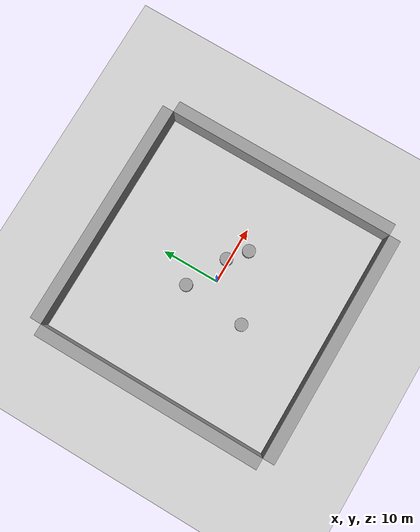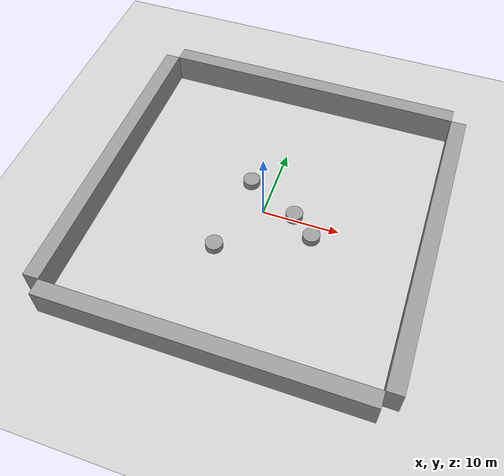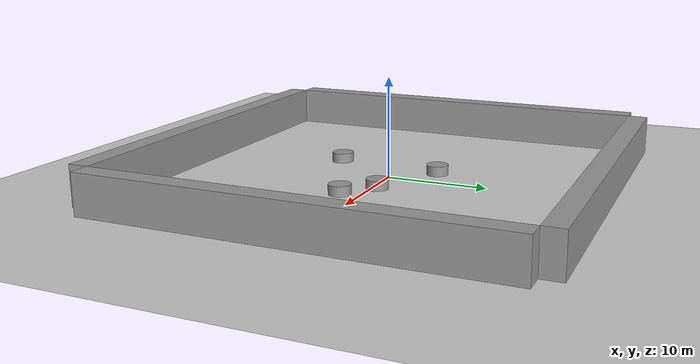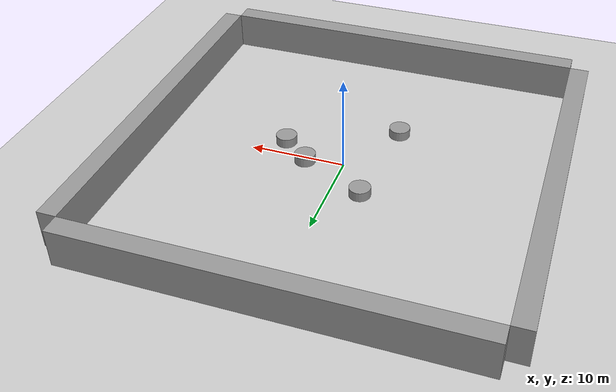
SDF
<sdf version="1.6">
 <world name="default">
  <light name="sun" type="directional">
   <pose>0 0 10 0 -0 0</pose>
   <diffuse>0.8 0.8 0.8 1</diffuse>
   <specular>0.1 0.1 0.1 1</specular>
   <attenuation>
    <range>1000</range>
    <constant>0.9</constant>
    <linear>0.01</linear>
    <quadratic>0.001</quadratic>
   </attenuation>
   <direction>-0.5 0.5 -1</direction>
  </light>
  <model name="ground_plane">
   <static>1</static>
   <link name="link">
    <collision name="collision">
     <geometry><plane><normal>0 0 1</normal><size>100 100</size></plane></geometry>
     <surface><friction><ode><mu>100</mu><mu2>50</mu2></ode></friction></surface>
    </collision>
    <visual name="visual">
     <cast_shadows>0</cast_shadows>
     <geometry><plane><normal>0 0 1</normal><size>100 100</size></plane></geometry>
     <material>
      <script><uri>file://media/materials/scripts/gazebo.material</uri><name>Gazebo/Grey</name></script>
     </material>
    </visual>
   </link>
  </model>
  <gravity>0 0 -9.8</gravity>
  <magnetic_field>6e-06 2.3e-05 -4.2e-05</magnetic_field>
  <atmosphere type="adiabatic"/>
  <physics name="default_physics" default="0" type="ode">
   <max_step_size>0.001</max_step_size>
   <real_time_factor>1</real_time_factor>
   <real_time_update_rate>1000</real_time_update_rate>
  </physics>
  <scene><ambient>0.4 0.4 0.4 1</ambient><background>0.7 0.7 0.7 1</background><shadows>1</shadows></scene>
  <spherical_coordinates>
   <surface_model>EARTH_WGS84</surface_model>
   <latitude_deg>0</latitude_deg>
   <longitude_deg>0</longitude_deg>
   <elevation>0</elevation>
   <heading_deg>0</heading_deg>
  </spherical_coordinates>
  <model name="unit_box_0">
   <static>1</static>
   <pose>0 21 2 0 -0 0</pose>
   <link name="link">
    <inertial>
     <mass>1</mass>
     <inertia>
      <ixx>0.166667</ixx>
      <ixy>0</ixy>
      <ixz>0</ixz>
      <iyy>0.166667</iyy>
      <iyz>0</iyz>
      <izz>0.166667</izz>
     </inertia>
    </inertial>
    <collision name="collision"><geometry><box><size>40 2 4</size></box></geometry></collision>
    <visual name="visual">
     <cast_shadows>0</cast_shadows>
     <geometry><box><size>40 2 4</size></box></geometry>
     <material>
      <script><name>Gazebo/Grey</name><uri>file://media/materials/scripts/gazebo.material</uri></script>
     </material>
    </visual>
    <gravity>0</gravity>
   </link>
  </model>
  <model name="unit_box_1">
   <static>1</static>
   <pose>0 -21 2 0 -0 0</pose>
   <link name="link">
    <inertial>
     <mass>1</mass>
     <inertia>
      <ixx>0.166667</ixx>
      <ixy>0</ixy>
      <ixz>0</ixz>
      <iyy>0.166667</iyy>
      <iyz>0</iyz>
      <izz>0.166667</izz>
     </inertia>
    </inertial>
    <collision name="collision"><geometry><box><size>40 2 4</size></box></geometry></collision>
    <visual name="visual">
     <cast_shadows>0</cast_shadows>
     <geometry><box><size>40 2 4</size></box></geometry>
     <material>
      <script><name>Gazebo/Grey</name><uri>file://media/materials/scripts/gazebo.material</uri></script>
     </material>
    </visual>
    <gravity>0</gravity>
   </link>
  </model>
  <model name="unit_box_2">
   <static>1</static>
   <pose>21 0 2 0 -0 0</pose>
   <link name="link">
    <inertial>
     <mass>1</mass>
     <inertia>
      <ixx>0.166667</ixx>
      <ixy>0</ixy>
      <ixz>0</ixz>
      <iyy>0.166667</iyy>
      <iyz>0</iyz>
      <izz>0.166667</izz>
     </inertia>
    </inertial>
    <collision name="collision"><geometry><box><size>2 40 4</size></box></geometry></collision>
    <visual name="visual">
     <cast_shadows>0</cast_shadows>
     <geometry><box><size>2 40 4</size></box></geometry>
     <material>
      <script><name>Gazebo/Grey</name><uri>file://media/materials/scripts/gazebo.material</uri></script>
     </material>
    </visual>
    <gravity>0</gravity>
   </link>
  </model>
  <model name="unit_box_3">
   <static>1</static>
   <pose>-21 0 2 0 -0 0</pose>
   <link name="link">
    <inertial>
     <mass>1</mass>
     <inertia>
      <ixx>0.166667</ixx>
      <ixy>0</ixy>
      <ixz>0</ixz>
      <iyy>0.166667</iyy>
      <iyz>0</iyz>
      <izz>0.166667</izz>
     </inertia>
    </inertial>
    <collision name="collision"><geometry><box><size>2 40 4</size></box></geometry></collision>
    <visual name="visual">
     <cast_shadows>0</cast_shadows>
     <geometry><box><size>2 40 4</size></box></geometry>
     <material>
      <script><name>Gazebo/Grey</name><uri>file://media/materials/scripts/gazebo.material</uri></script>
     </material>
    </visual>
    <gravity>0</gravity>
   </link>
  </model>
  <model name="unit_cylinder_0">
   <static>1</static>
   <pose>-4 -7 0.5 0 0 0</pose>
   <link name="link">
    <inertial>
     <mass>1</mass>
     <inertia><ixx>0.145833</ixx><ixy>0</ixy><ixz>0</ixz><iyy>0.145833</iyy><iyz>0</iyz><izz>0.125</izz></inertia>
    </inertial>
    <collision name="collision">
     <geometry><cylinder><radius>1.1</radius><length>1</length></cylinder></geometry>
    </collision>
    <visual name="visual">
     <geometry><cylinder><radius>1.1</radius><length>1</length></cylinder></geometry>
     <material>
      <script><name>Gazebo/Grey</name><uri>file://media/materials/scripts/gazebo.material</uri></script>
     </material>
    </visual>
   </link>
  </model>
  <model name="unit_cylinder_1">
   <static>1</static>
   <pose>-3 4 0.5 0 0 0</pose>
   <link name="link">
    <inertial>
     <mass>1</mass>
     <inertia><ixx>0.145833</ixx><ixy>0</ixy><ixz>0</ixz><iyy>0.145833</iyy><iyz>0</iyz><izz>0.125</izz></inertia>
    </inertial>
    <collision name="collision">
     <geometry><cylinder><radius>1.1</radius><length>1</length></cylinder></geometry>
    </collision>
    <visual name="visual">
     <geometry><cylinder><radius>1.1</radius><length>1</length></cylinder></geometry>
     <material>
      <script><name>Gazebo/Grey</name><uri>file://media/materials/scripts/gazebo.material</uri></script>
     </material>
    </visual>
   </link>
  </model>
  <model name="unit_cylinder_2">
   <static>1</static>
   <pose>7 -2 0.5 0 0 0</pose>
   <link name="link">
    <inertial>
     <mass>1</mass>
     <inertia><ixx>0.145833</ixx><ixy>0</ixy><ixz>0</ixz><iyy>0.145833</iyy><iyz>0</iyz><izz>0.125</izz></inertia>
    </inertial>
    <collision name="collision">
     <geometry><cylinder><radius>1.1</radius><length>1</length></cylinder></geometry>
    </collision>
    <visual name="visual">
     <geometry><cylinder><radius>1.1</radius><length>1</length></cylinder></geometry>
     <material>
      <script><name>Gazebo/Grey</name><uri>file://media/materials/scripts/gazebo.material</uri></script>
     </material>
    </visual>
   </link>
  </model>
  <model name="unit_cylinder_3">
   <static>1</static>
   <pose>4 0.5 0.5 0 0 0</pose>
   <link name="link">
    <inertial>
     <mass>1</mass>
     <inertia><ixx>0.145833</ixx><ixy>0</ixy><ixz>0</ixz><iyy>0.145833</iyy><iyz>0</iyz><izz>0.125</izz></inertia>
    </inertial>
    <collision name="collision">
     <geometry><cylinder><radius>1.1</radius><length>1</length></cylinder></geometry>
    </collision>
    <visual name="visual">
     <geometry><cylinder><radius>1.1</radius><length>1</length></cylinder></geometry>
     <material>
      <script><name>Gazebo/Grey</name><uri>file://media/materials/scripts/gazebo.material</uri></script>
     </material>
    </visual>
   </link>
  </model>
 </world>
</sdf>
